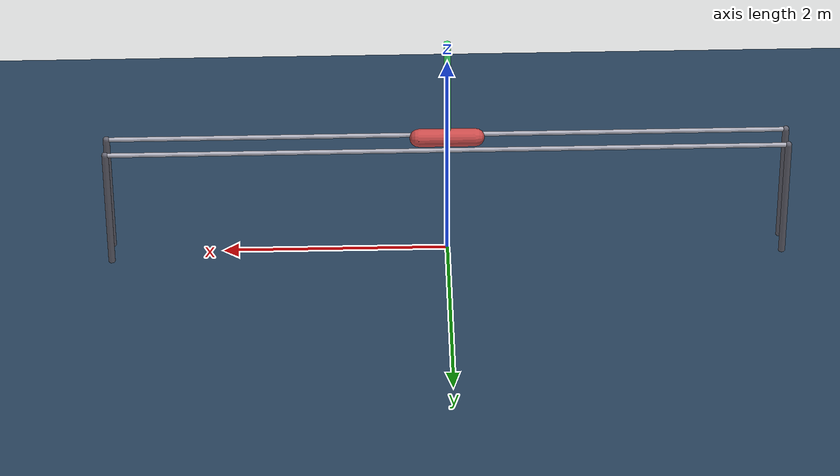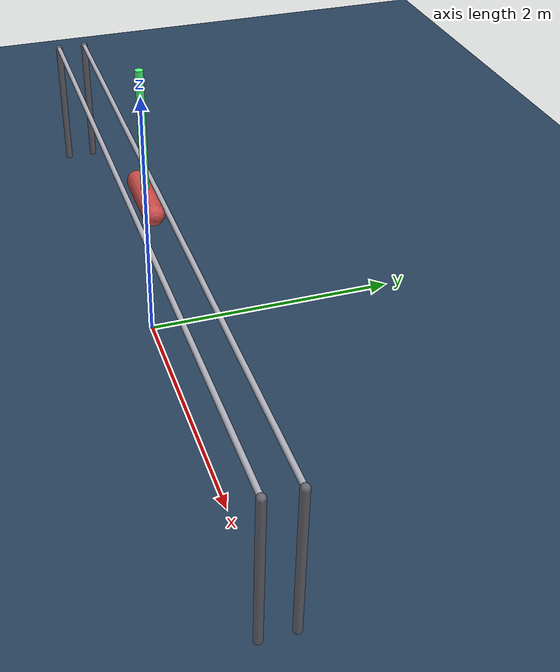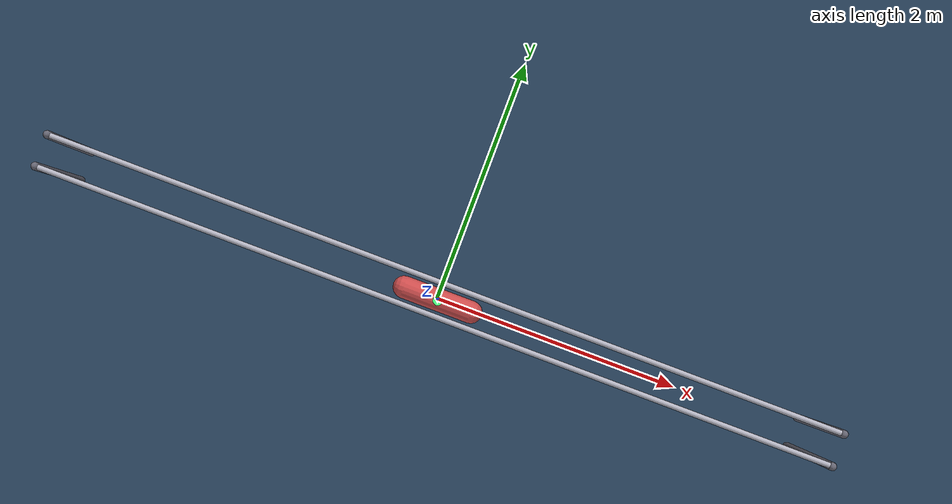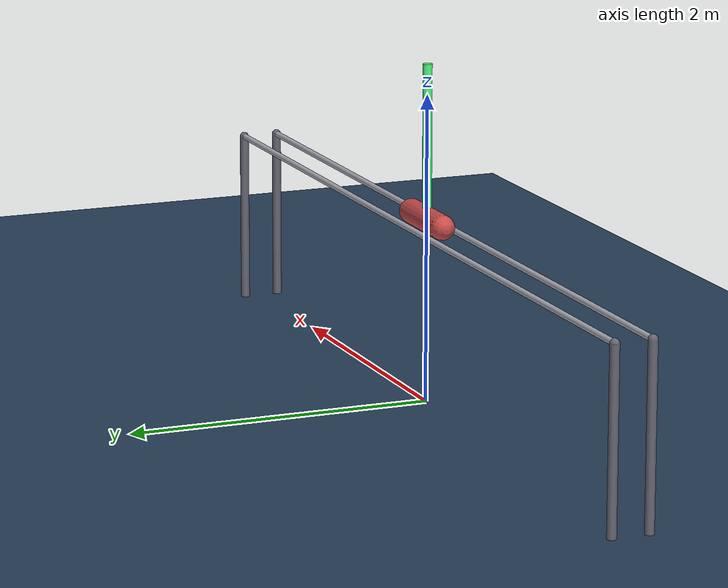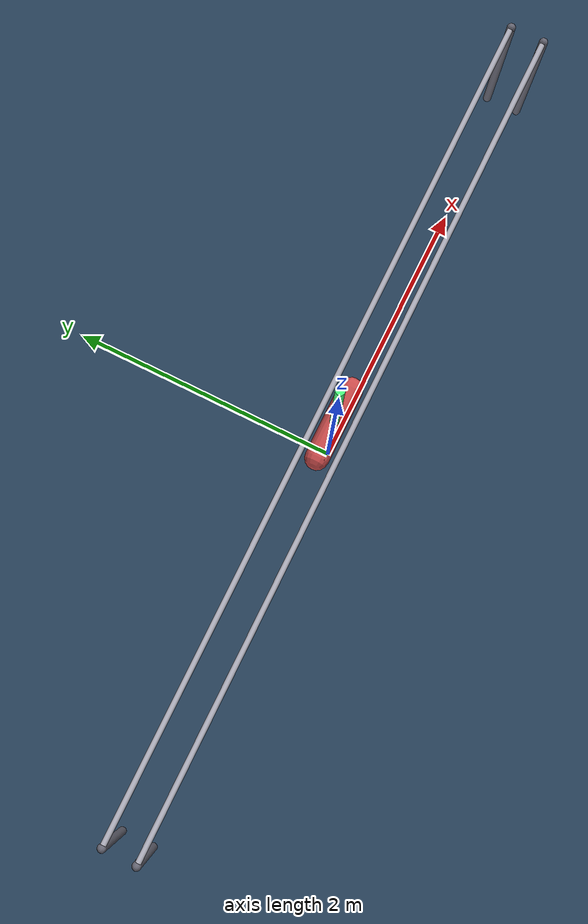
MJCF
<mujoco>
<option gravity="0 0 -9.81"/>

<asset>

    <texture type="2d" name="groundplane" builtin="checker" mark="edge"
             rgb1=".2 .3 .4" rgb2=".1 .2 .3" markrgb=".8 .8 .8"
             width="300" height="300"/>
    <material name="groundplane" texture="groundplane" texuniform="true"
              texrepeat="5 5" reflectance=".2"/>
  </asset>

<worldbody>
    <light pos="0 0 3" dir="0 0 -1" directional="true"/>
    <geom name="floor" type="plane" size="0 0 0.05" material="groundplane"/>

    <geom name="rail_left"  type="cylinder" fromto="-3  0.12 1.15  3  0.12 1.15" size="0.02"
          rgba="0.7 0.7 0.75 1" contype="0" conaffinity="0"/>
    <geom name="rail_right" type="cylinder" fromto="-3 -0.12 1.15  3 -0.12 1.15" size="0.02"
          rgba="0.7 0.7 0.75 1" contype="0" conaffinity="0"/>

    <geom type="capsule" fromto="-3  0.12 0  -3  0.12 1.15" size="0.03" rgba="0.4 0.4 0.45 1" contype="0" conaffinity="0"/>
    <geom type="capsule" fromto="-3 -0.12 0  -3 -0.12 1.15" size="0.03" rgba="0.4 0.4 0.45 1" contype="0" conaffinity="0"/>
    <geom type="capsule" fromto=" 3  0.12 0   3  0.12 1.15" size="0.03" rgba="0.4 0.4 0.45 1" contype="0" conaffinity="0"/>
    <geom type="capsule" fromto=" 3 -0.12 0   3 -0.12 1.15" size="0.03" rgba="0.4 0.4 0.45 1" contype="0" conaffinity="0"/>

    <body name="box" pos="0 0 1.2">
        <geom type="capsule" size="0.08 0.25" euler ="0 90 0" rgba="0.8 0.3 0.3 1" mass="1"/>
        <joint type="slide" axis="1 0 0" name="slide_x" range="-2.9 2.9"/>
        <body name="pendulum" pos="0 0 0">
            <geom type="cylinder" fromto="0 0 0 0 0 1" size="0.03" rgba="0.3 1 0.5 1" mass="0.1"/>
            <joint type="hinge" axis="0 1 0" name="hinge_y"/>
        </body>
    </body>
</worldbody>

<actuator>
    <motor  name="slide_x" joint="slide_x" ctrlrange="-10 10"/>
</actuator>
</mujoco>
